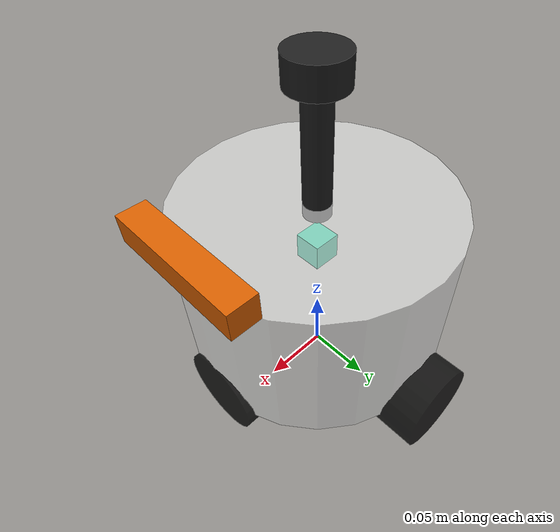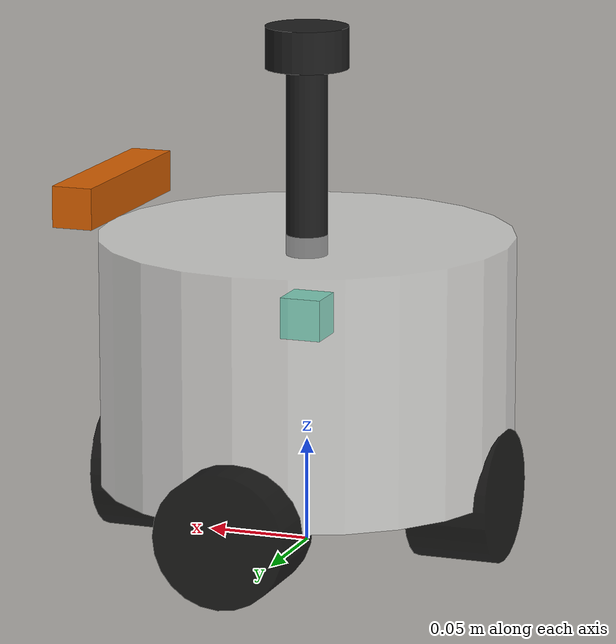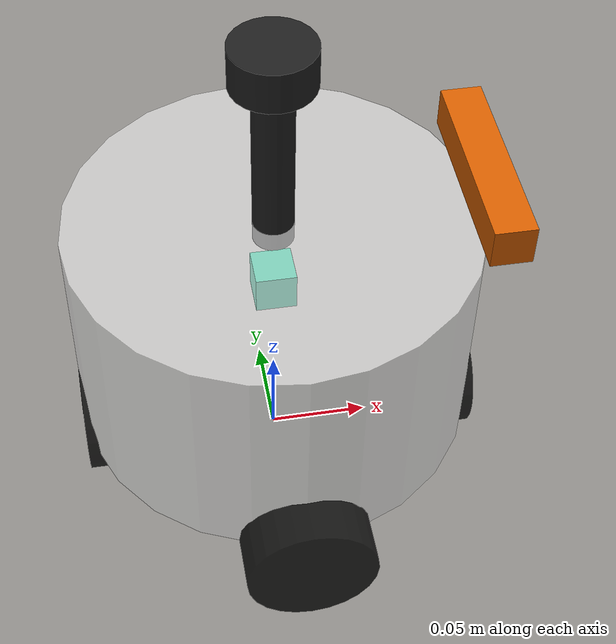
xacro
<?xml version="1.0"?>
<robot xmlns:xacro="http://www.ros.org/wiki/xacro" name="fishbot">
    <xacro:include filename="$(find fishbot_description)/urdf/fishbot/base.urdf.xacro" />
    <!-- 传感器组件 -->
    <xacro:include filename="$(find fishbot_description)/urdf/fishbot/sensor/imu.urdf.xacro" />
    <xacro:include filename="$(find fishbot_description)/urdf/fishbot/sensor/laser.urdf.xacro" />
    <xacro:include filename="$(find fishbot_description)/urdf/fishbot/sensor/camera.urdf.xacro" />
     <!-- 执行器组件 -->
    <xacro:include filename="$(find fishbot_description)/urdf/fishbot/actuator/wheel.urdf.xacro" />
    <xacro:include filename="$(find fishbot_description)/urdf/fishbot/actuator/caster.urdf.xacro" />

    <xacro:base_xacro length="0.12" radius="0.1" />
    <!-- 传感器 -->
    <xacro:imu_xacro xyz="0 0 0.02" />
    <xacro:laser_xacro xyz="0 0 0.10" />
    <xacro:camera_xacro xyz="0.10 0 0.075" />
    <!-- 执行器主动轮+从动轮 -->
    <xacro:wheel_xacro wheel_name="left" xyz="0 0.10 -0.06" rpy="1.57079 0 0" axs="0 1 0" />
    <xacro:wheel_xacro wheel_name="right" xyz="0 -0.10 -0.06" rpy="1.57079 0 0" axs="0 1 0" />
    <xacro:wheel_xacro wheel_name="front" xyz="0.08 0.0 -0.06" rpy="1.57079 0 1.57079" axs="1 0 0" />
    <xacro:wheel_xacro wheel_name="back"  xyz="-0.08 0.0 -0.06" rpy="1.57079 0 1.57079" axs="1 0 0" />

    <!-- Gazebo 插件 -->
    <xacro:include filename="$(find fishbot_description)/urdf/fishbot/plugins/gazebo_control_plugin.xacro" />
    <xacro:include filename="$(find fishbot_description)/urdf/fishbot/fishbot.ros2_control.xacro" />
    <xacro:fishbot_ros2_control />
    <xacro:include filename="$(find fishbot_description)/urdf/fishbot/plugins/gazebo_sensor_plugin.xacro" />
    <xacro:gazebo_sensor_plugin />
</robot>

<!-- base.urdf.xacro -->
<robot xmlns:xacro="http://www.ros.org/wiki/xacro">
  <xacro:include filename="$(find fishbot_description)/urdf/fishbot/common_inertia.xacro" />
  <xacro:macro name="base_xacro" params="radius length">
    <link name="base_footprint" />

    <link name="base_link">
      <visual>
        <origin xyz="0.0 0.0 0.0" rpy="0.0 0.0 0.0" />
        <geometry>
          <cylinder radius="${radius}" length="${length}"/>
        </geometry>
        <material name="white">
          <color rgba="1.0 1.0 1.0 0.5"/>
        </material>
      </visual>

      <collision>
        <origin xyz="0.0 0.0 0.0" rpy="0.0 0.0 0.0" />
        <geometry>
          <cylinder radius="${radius}" length="${length}"/>
        </geometry>
      </collision>

      <xacro:cylinder_inertia m="1.0" r="${radius}" h="${length}" />
    </link>

    <joint name="base_joint" type="fixed">
      <origin xyz="0.0 0.0 ${length / 2.0 + 0.032 - 0.001}" rpy="0.0 0.0 0.0"/>
      <parent link="base_footprint"/>
      <child link="base_link"/>
    </joint>

  </xacro:macro>

</robot>

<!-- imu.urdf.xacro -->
<robot xmlns:xacro="http://www.ros.org/wiki/xacro">
  <xacro:include filename="$(find fishbot_description)/urdf/fishbot/common_inertia.xacro" />

  <xacro:macro name="imu_xacro" params="xyz">
    <link name="imu_link">
      <visual>
        <origin xyz="0.0 0.0 0.0" rpy="0.0 0.0 0.0" />
        <geometry>
          <box size="0.02 0.02 0.02" />
        </geometry>
      </visual>
      <collision>
        <origin xyz="0.0 0.0 0.0" rpy="0.0 0.0 0.0" />
        <geometry>
          <box size="0.02 0.02 0.02" />
        </geometry>
      </collision>
      <material name="black">
        <color rgba="0.0 0.0 0.0 0.5"/>
      </material>
      <xacro:box_inertia m="0.05" w="0.02" h="0.02" d="0.02" />
    </link>

    <joint name="imu_joint" type="fixed">
      <parent link="base_link" />
      <child link="imu_link" />
      <origin xyz="${xyz}" rpy="0.0 0.0 0.0" />
    </joint>
  </xacro:macro>

</robot>

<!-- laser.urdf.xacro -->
<robot xmlns:xacro="http://www.ros.org/wiki/xacro">
  <xacro:include filename="$(find fishbot_description)/urdf/fishbot/common_inertia.xacro" />

  <xacro:macro name="laser_xacro" params="xyz">

    <link name="laser_cylinder_link">
      <visual>
        <origin xyz="0.0 0.0 0.0" rpy="0.0 0.0 0.0" />
        <geometry>
          <cylinder radius='0.01' length='0.1' />
        </geometry>
      </visual>
      <collision>
        <origin xyz="0.0 0.0 0.0" rpy="0.0 0.0 0.0" />
        <geometry>
          <cylinder radius='0.01' length='0.1' />
        </geometry>
      </collision>
      <material name="dark_green">
        <color rgba="0.0 1.0 0.0 0.9"/>
      </material>
      <xacro:cylinder_inertia m="0.05" r="0.01" h="0.1" />
    </link>

    <link name="laser_link">
      <visual>
        <origin xyz="0.0 0.0 0.0" rpy="0.0 0.0 0.0" />
        <geometry>
          <cylinder radius='0.02' length='0.02' />
        </geometry>
      </visual>
      <collision>
        <origin xyz="0.0 0.0 0.0" rpy="0.0 0.0 0.0" />
        <geometry>
          <cylinder radius='0.02' length='0.02' />
        </geometry>
      </collision>
      <material name="light_green">
        <color rgba="0.0 1.0 0.0 0.7"/>
      </material>
      <xacro:cylinder_inertia m="0.1" r="0.02" h="0.02" />
    </link>

    <joint name="laser_joint" type="fixed">
      <parent link="laser_cylinder_link" />
      <child link="laser_link" />
      <origin xyz="0.0 0.0 0.05" rpy="0.0 0.0 0.0" />
    </joint>

    <joint name="laser_cylinder_joint" type="fixed">
      <parent link="base_link" />
      <child link="laser_cylinder_link" />
      <origin xyz="${xyz}" rpy="0.0 0.0 0.0" />
    </joint>

    <gazebo reference="laser_cylinder_link">
      <material>Gazebo/Black</material>
    </gazebo>
    <gazebo reference="laser_link">
      <material>Gazebo/Black</material>
    </gazebo>

  </xacro:macro>

</robot>

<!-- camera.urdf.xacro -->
<robot xmlns:xacro="http://www.ros.org/wiki/xacro">
  <xacro:include filename="$(find fishbot_description)/urdf/fishbot/common_inertia.xacro" />

  <xacro:macro name="camera_xacro" params="xyz">
    <link name="camera_link">
      <visual>
        <origin xyz="0.0 0.0 0.0" rpy="0.0 0.0 0.0" />
        <geometry>
          <box size="0.02 0.1 0.02" />
        </geometry>
      </visual>
      <collision>
        <origin xyz="0.0 0.0 0.0" rpy="0.0 0.0 0.0" />
        <geometry>
          <box size="0.02 0.1 0.02" />
        </geometry>
      </collision>
      <material name="blue">
        <color rgba="0.0 0.0 1.0 0.5"/>
      </material>
      <xacro:box_inertia m="0.05" w="0.02" h="0.1" d="0.02" />
    </link>

    <link name="camera_optical_link" />

    <joint name="camera_joint" type="fixed">
      <parent link="base_link" />
      <child link="camera_link" />
      <origin xyz="${xyz}" rpy="0.0 0.0 0.0" />
    </joint>

    <joint name="camera_optical_joint" type="fixed">
      <parent link="camera_link" />
      <child link="camera_optical_link" />
      <origin xyz="0 0 0" rpy="${-pi/2} 0.0 ${-pi/2}" />
    </joint>

  </xacro:macro>

</robot>

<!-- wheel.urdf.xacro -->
<robot xmlns:xacro="http://www.ros.org/wiki/xacro">
   <xacro:include filename="$(find fishbot_description)/urdf/fishbot/common_inertia.xacro" />
    <xacro:macro name="wheel_xacro" params="wheel_name xyz rpy axs">
        <link name="${wheel_name}_wheel_link">
            <visual>
                <origin xyz="0 0 0" rpy="${rpy}" />
                <geometry>
                    <cylinder length="0.04" radius="0.032" />
                </geometry>
                <material name="black">
                    <color rgba="0.0 0.0 0.0 0.8"/>
                </material>
            </visual>
            <collision>
                <origin xyz="0 0 0" rpy="${rpy}" />
                <geometry>
                    <cylinder length="0.04" radius="0.032" />
                </geometry>
                <material name="black">
                    <color rgba="0.0 0.0 0.0 0.8"/>
                </material>
            </collision>
            <xacro:cylinder_inertia m="0.1" h="0.04" r="0.032"/>
        </link>
        <gazebo reference="${wheel_name}_wheel_link">
            <mu1 value="1.0" />
            <mu2 value="0.1" />
            <kp value="1000000000.0" />
            <kd value="1.0" />
        </gazebo>

        <joint name="${wheel_name}_wheel_joint" type="continuous">
            <parent link="base_link" />
            <child link="${wheel_name}_wheel_link" />
            <origin xyz="${xyz}" />
            <axis xyz="${axs}" />
        </joint>
    </xacro:macro>
</robot>
